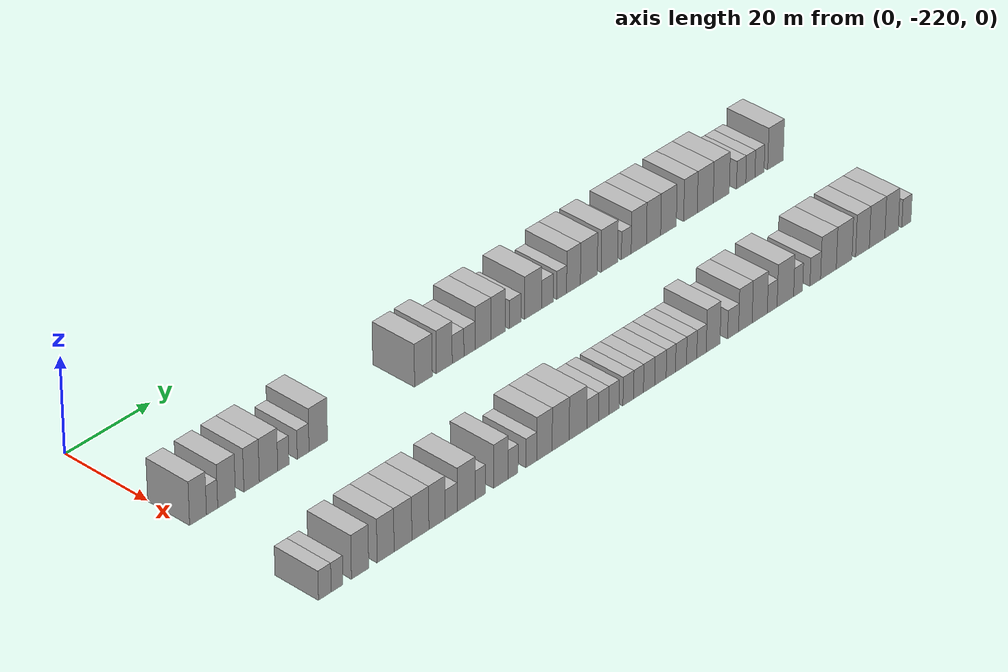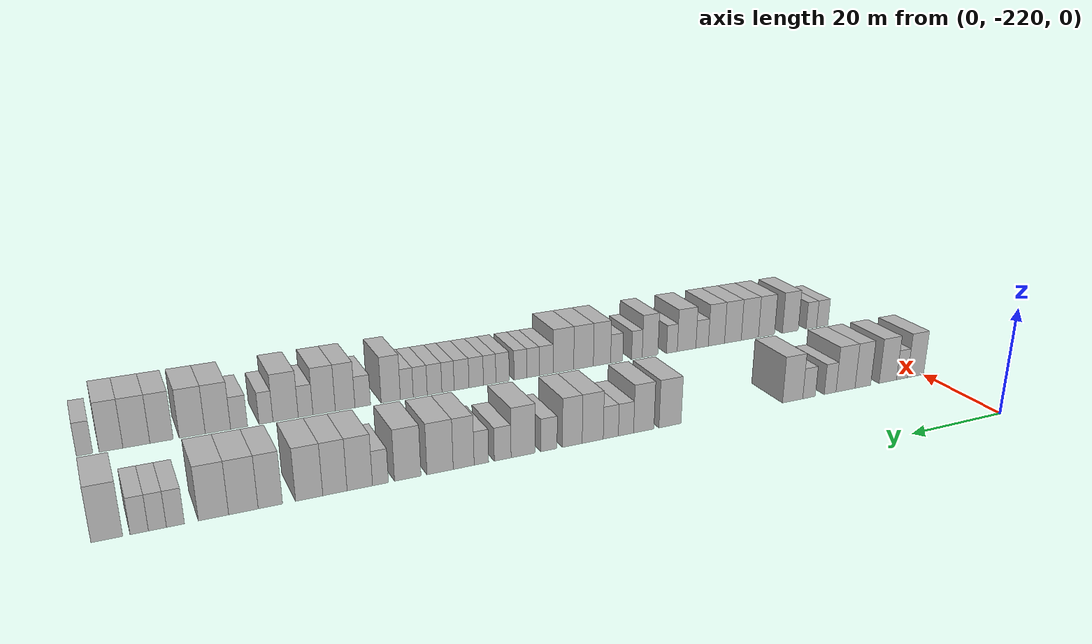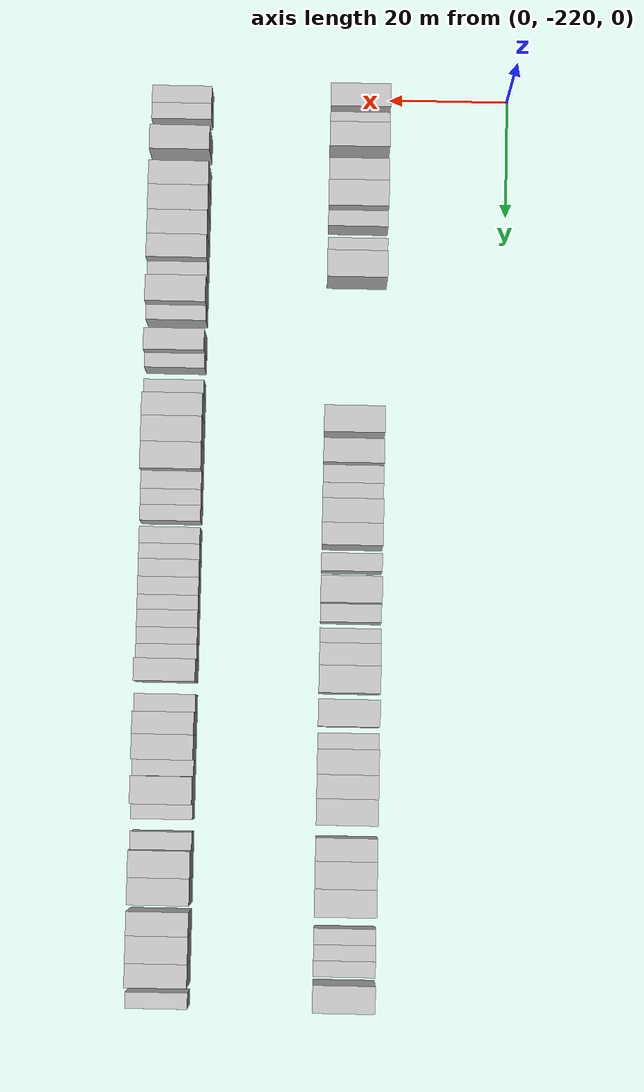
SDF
<sdf version="1.6">
 <world name="default">
  <model name="building_1">
   <static>1</static>
   <pose>25.0000 -218.0237 0 0.000000 0.000000 0.000000</pose>
   <link name="link">
    <pose>0 0 4.50 0 0 0</pose>
    <collision name="collision"><geometry><box><size>10.0000 3.9525 9.0000</size></box></geometry></collision>
    <visual name="visual">
     <cast_shadows>0</cast_shadows>
     <geometry><box><size>10.0000 3.9525 9.0000</size></box></geometry>
     <material>
      <script>
       <uri>model://HANNAS_wall/materials/scripts</uri>
       <uri>model://HANNAS_wall/materials/textures</uri>
       <name>vrc/HANNAS_wall</name>
      </script>
     </material>
    </visual>
   </link>
  </model>
  <model name="building_2">
   <static>1</static>
   <pose>25.0000 -214.7297 0 0.000000 0.000000 0.000000</pose>
   <link name="link">
    <pose>0 0 3.00 0 0 0</pose>
    <collision name="collision"><geometry><box><size>10.0000 2.6356 6.0000</size></box></geometry></collision>
    <visual name="visual">
     <cast_shadows>0</cast_shadows>
     <geometry><box><size>10.0000 2.6356 6.0000</size></box></geometry>
     <material>
      <script>
       <uri>model://HANNAS_wall/materials/scripts</uri>
       <uri>model://HANNAS_wall/materials/textures</uri>
       <name>vrc/HANNAS_wall</name>
      </script>
     </material>
    </visual>
   </link>
  </model>
  <model name="building_3">
   <static>1</static>
   <pose>25.0000 -211.3211 0 0.000000 0.000000 0.000000</pose>
   <link name="link">
    <pose>0 0 4.50 0 0 0</pose>
    <collision name="collision"><geometry><box><size>10.0000 4.1815 9.0000</size></box></geometry></collision>
    <visual name="visual">
     <cast_shadows>0</cast_shadows>
     <geometry><box><size>10.0000 4.1815 9.0000</size></box></geometry>
     <material>
      <script>
       <uri>model://HANNAS_wall/materials/scripts</uri>
       <uri>model://HANNAS_wall/materials/textures</uri>
       <name>vrc/HANNAS_wall</name>
      </script>
     </material>
    </visual>
   </link>
  </model>
  <model name="building_4">
   <static>1</static>
   <pose>25.0000 -205.3935 0 0.000000 0.000000 0.000000</pose>
   <link name="link">
    <pose>0 0 4.50 0 0 0</pose>
    <collision name="collision"><geometry><box><size>10.0000 3.6737 9.0000</size></box></geometry></collision>
    <visual name="visual">
     <cast_shadows>0</cast_shadows>
     <geometry><box><size>10.0000 3.6737 9.0000</size></box></geometry>
     <material>
      <script>
       <uri>model://HANNAS_wall/materials/scripts</uri>
       <uri>model://HANNAS_wall/materials/textures</uri>
       <name>vrc/HANNAS_wall</name>
      </script>
     </material>
    </visual>
   </link>
  </model>
  <model name="building_5">
   <static>1</static>
   <pose>25.0000 -201.3614 0 0.000000 0.000000 0.000000</pose>
   <link name="link">
    <pose>0 0 4.50 0 0 0</pose>
    <collision name="collision"><geometry><box><size>10.0000 4.3906 9.0000</size></box></geometry></collision>
    <visual name="visual">
     <cast_shadows>0</cast_shadows>
     <geometry><box><size>10.0000 4.3906 9.0000</size></box></geometry>
     <material>
      <script>
       <uri>model://HANNAS_wall/materials/scripts</uri>
       <uri>model://HANNAS_wall/materials/textures</uri>
       <name>vrc/HANNAS_wall</name>
      </script>
     </material>
    </visual>
   </link>
  </model>
  <model name="building_6">
   <static>1</static>
   <pose>25.0000 -197.8209 0 0.000000 0.000000 0.000000</pose>
   <link name="link">
    <pose>0 0 3.00 0 0 0</pose>
    <collision name="collision"><geometry><box><size>10.0000 2.6903 6.0000</size></box></geometry></collision>
    <visual name="visual">
     <cast_shadows>0</cast_shadows>
     <geometry><box><size>10.0000 2.6903 6.0000</size></box></geometry>
     <material>
      <script>
       <uri>model://HANNAS_wall/materials/scripts</uri>
       <uri>model://HANNAS_wall/materials/textures</uri>
       <name>vrc/HANNAS_wall</name>
      </script>
     </material>
    </visual>
   </link>
  </model>
  <model name="building_7">
   <static>1</static>
   <pose>25.0000 -193.0560 0 0.000000 0.000000 0.000000</pose>
   <link name="link">
    <pose>0 0 3.00 0 0 0</pose>
    <collision name="collision"><geometry><box><size>10.0000 2.8395 6.0000</size></box></geometry></collision>
    <visual name="visual">
     <cast_shadows>0</cast_shadows>
     <geometry><box><size>10.0000 2.8395 6.0000</size></box></geometry>
     <material>
      <script>
       <uri>model://HANNAS_wall/materials/scripts</uri>
       <uri>model://HANNAS_wall/materials/textures</uri>
       <name>vrc/HANNAS_wall</name>
      </script>
     </material>
    </visual>
   </link>
  </model>
  <model name="building_8">
   <static>1</static>
   <pose>25.0000 -189.3936 0 0.000000 0.000000 0.000000</pose>
   <link name="link">
    <pose>0 0 4.50 0 0 0</pose>
    <collision name="collision"><geometry><box><size>10.0000 4.4855 9.0000</size></box></geometry></collision>
    <visual name="visual">
     <cast_shadows>0</cast_shadows>
     <geometry><box><size>10.0000 4.4855 9.0000</size></box></geometry>
     <material>
      <script>
       <uri>model://HANNAS_wall/materials/scripts</uri>
       <uri>model://HANNAS_wall/materials/textures</uri>
       <name>vrc/HANNAS_wall</name>
      </script>
     </material>
    </visual>
   </link>
  </model>
  <model name="building_9">
   <static>1</static>
   <pose>25.0000 -163.4906 0 0.000000 0.000000 0.000000</pose>
   <link name="link">
    <pose>0 0 4.50 0 0 0</pose>
    <collision name="collision"><geometry><box><size>10.0000 4.4402 9.0000</size></box></geometry></collision>
    <visual name="visual">
     <cast_shadows>0</cast_shadows>
     <geometry><box><size>10.0000 4.4402 9.0000</size></box></geometry>
     <material>
      <script>
       <uri>model://HANNAS_wall/materials/scripts</uri>
       <uri>model://HANNAS_wall/materials/textures</uri>
       <name>vrc/HANNAS_wall</name>
      </script>
     </material>
    </visual>
   </link>
  </model>
  <model name="building_10">
   <static>1</static>
   <pose>25.0000 -158.2627 0 0.000000 0.000000 0.000000</pose>
   <link name="link">
    <pose>0 0 4.50 0 0 0</pose>
    <collision name="collision"><geometry><box><size>10.0000 4.0157 9.0000</size></box></geometry></collision>
    <visual name="visual">
     <cast_shadows>0</cast_shadows>
     <geometry><box><size>10.0000 4.0157 9.0000</size></box></geometry>
     <material>
      <script>
       <uri>model://HANNAS_wall/materials/scripts</uri>
       <uri>model://HANNAS_wall/materials/textures</uri>
       <name>vrc/HANNAS_wall</name>
      </script>
     </material>
    </visual>
   </link>
  </model>
  <model name="building_11">
   <static>1</static>
   <pose>25.0000 -154.7772 0 0.000000 0.000000 0.000000</pose>
   <link name="link">
    <pose>0 0 3.00 0 0 0</pose>
    <collision name="collision"><geometry><box><size>10.0000 2.9553 6.0000</size></box></geometry></collision>
    <visual name="visual">
     <cast_shadows>0</cast_shadows>
     <geometry><box><size>10.0000 2.9553 6.0000</size></box></geometry>
     <material>
      <script>
       <uri>model://HANNAS_wall/materials/scripts</uri>
       <uri>model://HANNAS_wall/materials/textures</uri>
       <name>vrc/HANNAS_wall</name>
      </script>
     </material>
    </visual>
   </link>
  </model>
  <model name="building_12">
   <static>1</static>
   <pose>25.0000 -151.8430 0 0.000000 0.000000 0.000000</pose>
   <link name="link">
    <pose>0 0 3.00 0 0 0</pose>
    <collision name="collision"><geometry><box><size>10.0000 2.9130 6.0000</size></box></geometry></collision>
    <visual name="visual">
     <cast_shadows>0</cast_shadows>
     <geometry><box><size>10.0000 2.9130 6.0000</size></box></geometry>
     <material>
      <script>
       <uri>model://HANNAS_wall/materials/scripts</uri>
       <uri>model://HANNAS_wall/materials/textures</uri>
       <name>vrc/HANNAS_wall</name>
      </script>
     </material>
    </visual>
   </link>
  </model>
  <model name="building_13">
   <static>1</static>
   <pose>25.0000 -148.3848 0 0.000000 0.000000 0.000000</pose>
   <link name="link">
    <pose>0 0 4.50 0 0 0</pose>
    <collision name="collision"><geometry><box><size>10.0000 4.0035 9.0000</size></box></geometry></collision>
    <visual name="visual">
     <cast_shadows>0</cast_shadows>
     <geometry><box><size>10.0000 4.0035 9.0000</size></box></geometry>
     <material>
      <script>
       <uri>model://HANNAS_wall/materials/scripts</uri>
       <uri>model://HANNAS_wall/materials/textures</uri>
       <name>vrc/HANNAS_wall</name>
      </script>
     </material>
    </visual>
   </link>
  </model>
  <model name="building_14">
   <static>1</static>
   <pose>25.0000 -144.5421 0 0.000000 0.000000 0.000000</pose>
   <link name="link">
    <pose>0 0 4.50 0 0 0</pose>
    <collision name="collision"><geometry><box><size>10.0000 3.6819 9.0000</size></box></geometry></collision>
    <visual name="visual">
     <cast_shadows>0</cast_shadows>
     <geometry><box><size>10.0000 3.6819 9.0000</size></box></geometry>
     <material>
      <script>
       <uri>model://HANNAS_wall/materials/scripts</uri>
       <uri>model://HANNAS_wall/materials/textures</uri>
       <name>vrc/HANNAS_wall</name>
      </script>
     </material>
    </visual>
   </link>
  </model>
  <model name="building_15">
   <static>1</static>
   <pose>25.0000 -140.2156 0 0.000000 0.000000 0.000000</pose>
   <link name="link">
    <pose>0 0 3.00 0 0 0</pose>
    <collision name="collision"><geometry><box><size>10.0000 2.9711 6.0000</size></box></geometry></collision>
    <visual name="visual">
     <cast_shadows>0</cast_shadows>
     <geometry><box><size>10.0000 2.9711 6.0000</size></box></geometry>
     <material>
      <script>
       <uri>model://HANNAS_wall/materials/scripts</uri>
       <uri>model://HANNAS_wall/materials/textures</uri>
       <name>vrc/HANNAS_wall</name>
      </script>
     </material>
    </visual>
   </link>
  </model>
  <model name="building_16">
   <static>1</static>
   <pose>25.0000 -135.5298 0 0.000000 0.000000 0.000000</pose>
   <link name="link">
    <pose>0 0 4.50 0 0 0</pose>
    <collision name="collision"><geometry><box><size>10.0000 4.4004 9.0000</size></box></geometry></collision>
    <visual name="visual">
     <cast_shadows>0</cast_shadows>
     <geometry><box><size>10.0000 4.4004 9.0000</size></box></geometry>
     <material>
      <script>
       <uri>model://HANNAS_wall/materials/scripts</uri>
       <uri>model://HANNAS_wall/materials/textures</uri>
       <name>vrc/HANNAS_wall</name>
      </script>
     </material>
    </visual>
   </link>
  </model>
  <model name="building_17">
   <static>1</static>
   <pose>25.0000 -131.8402 0 0.000000 0.000000 0.000000</pose>
   <link name="link">
    <pose>0 0 3.00 0 0 0</pose>
    <collision name="collision"><geometry><box><size>10.0000 2.9789 6.0000</size></box></geometry></collision>
    <visual name="visual">
     <cast_shadows>0</cast_shadows>
     <geometry><box><size>10.0000 2.9789 6.0000</size></box></geometry>
     <material>
      <script>
       <uri>model://HANNAS_wall/materials/scripts</uri>
       <uri>model://HANNAS_wall/materials/textures</uri>
       <name>vrc/HANNAS_wall</name>
      </script>
     </material>
    </visual>
   </link>
  </model>
  <model name="building_18">
   <static>1</static>
   <pose>25.0000 -128.0806 0 0.000000 0.000000 0.000000</pose>
   <link name="link">
    <pose>0 0 3.00 0 0 0</pose>
    <collision name="collision"><geometry><box><size>10.0000 2.5402 6.0000</size></box></geometry></collision>
    <visual name="visual">
     <cast_shadows>0</cast_shadows>
     <geometry><box><size>10.0000 2.5402 6.0000</size></box></geometry>
     <material>
      <script>
       <uri>model://HANNAS_wall/materials/scripts</uri>
       <uri>model://HANNAS_wall/materials/textures</uri>
       <name>vrc/HANNAS_wall</name>
      </script>
     </material>
    </visual>
   </link>
  </model>
  <model name="building_19">
   <static>1</static>
   <pose>25.0000 -125.0010 0 0.000000 0.000000 0.000000</pose>
   <link name="link">
    <pose>0 0 4.50 0 0 0</pose>
    <collision name="collision"><geometry><box><size>10.0000 3.6189 9.0000</size></box></geometry></collision>
    <visual name="visual">
     <cast_shadows>0</cast_shadows>
     <geometry><box><size>10.0000 3.6189 9.0000</size></box></geometry>
     <material>
      <script>
       <uri>model://HANNAS_wall/materials/scripts</uri>
       <uri>model://HANNAS_wall/materials/textures</uri>
       <name>vrc/HANNAS_wall</name>
      </script>
     </material>
    </visual>
   </link>
  </model>
  <model name="building_20">
   <static>1</static>
   <pose>25.0000 -120.9565 0 0.000000 0.000000 0.000000</pose>
   <link name="link">
    <pose>0 0 4.50 0 0 0</pose>
    <collision name="collision"><geometry><box><size>10.0000 4.4701 9.0000</size></box></geometry></collision>
    <visual name="visual">
     <cast_shadows>0</cast_shadows>
     <geometry><box><size>10.0000 4.4701 9.0000</size></box></geometry>
     <material>
      <script>
       <uri>model://HANNAS_wall/materials/scripts</uri>
       <uri>model://HANNAS_wall/materials/textures</uri>
       <name>vrc/HANNAS_wall</name>
      </script>
     </material>
    </visual>
   </link>
  </model>
  <model name="building_21">
   <static>1</static>
   <pose>25.0000 -115.5185 0 0.000000 0.000000 0.000000</pose>
   <link name="link">
    <pose>0 0 4.50 0 0 0</pose>
    <collision name="collision"><geometry><box><size>10.0000 4.4060 9.0000</size></box></geometry></collision>
    <visual name="visual">
     <cast_shadows>0</cast_shadows>
     <geometry><box><size>10.0000 4.4060 9.0000</size></box></geometry>
     <material>
      <script>
       <uri>model://HANNAS_wall/materials/scripts</uri>
       <uri>model://HANNAS_wall/materials/textures</uri>
       <name>vrc/HANNAS_wall</name>
      </script>
     </material>
    </visual>
   </link>
  </model>
  <model name="building_22">
   <static>1</static>
   <pose>25.0000 -111.0188 0 0.000000 0.000000 0.000000</pose>
   <link name="link">
    <pose>0 0 3.00 0 0 0</pose>
    <collision name="collision"><geometry><box><size>10.0000 2.5934 6.0000</size></box></geometry></collision>
    <visual name="visual">
     <cast_shadows>0</cast_shadows>
     <geometry><box><size>10.0000 2.5934 6.0000</size></box></geometry>
     <material>
      <script>
       <uri>model://HANNAS_wall/materials/scripts</uri>
       <uri>model://HANNAS_wall/materials/textures</uri>
       <name>vrc/HANNAS_wall</name>
      </script>
     </material>
    </visual>
   </link>
  </model>
  <model name="building_23">
   <static>1</static>
   <pose>25.0000 -107.6772 0 0.000000 0.000000 0.000000</pose>
   <link name="link">
    <pose>0 0 4.50 0 0 0</pose>
    <collision name="collision"><geometry><box><size>10.0000 4.0898 9.0000</size></box></geometry></collision>
    <visual name="visual">
     <cast_shadows>0</cast_shadows>
     <geometry><box><size>10.0000 4.0898 9.0000</size></box></geometry>
     <material>
      <script>
       <uri>model://HANNAS_wall/materials/scripts</uri>
       <uri>model://HANNAS_wall/materials/textures</uri>
       <name>vrc/HANNAS_wall</name>
      </script>
     </material>
    </visual>
   </link>
  </model>
  <model name="building_24">
   <static>1</static>
   <pose>25.0000 -103.7062 0 0.000000 0.000000 0.000000</pose>
   <link name="link">
    <pose>0 0 4.50 0 0 0</pose>
    <collision name="collision"><geometry><box><size>10.0000 3.8522 9.0000</size></box></geometry></collision>
    <visual name="visual">
     <cast_shadows>0</cast_shadows>
     <geometry><box><size>10.0000 3.8522 9.0000</size></box></geometry>
     <material>
      <script>
       <uri>model://HANNAS_wall/materials/scripts</uri>
       <uri>model://HANNAS_wall/materials/textures</uri>
       <name>vrc/HANNAS_wall</name>
      </script>
     </material>
    </visual>
   </link>
  </model>
  <model name="building_25">
   <static>1</static>
   <pose>25.0000 -99.6656 0 0.000000 0.000000 0.000000</pose>
   <link name="link">
    <pose>0 0 4.50 0 0 0</pose>
    <collision name="collision"><geometry><box><size>10.0000 4.2291 9.0000</size></box></geometry></collision>
    <visual name="visual">
     <cast_shadows>0</cast_shadows>
     <geometry><box><size>10.0000 4.2291 9.0000</size></box></geometry>
     <material>
      <script>
       <uri>model://HANNAS_wall/materials/scripts</uri>
       <uri>model://HANNAS_wall/materials/textures</uri>
       <name>vrc/HANNAS_wall</name>
      </script>
     </material>
    </visual>
   </link>
  </model>
  <model name="building_26">
   <static>1</static>
   <pose>25.0000 -93.7013 0 0.000000 0.000000 0.000000</pose>
   <link name="link">
    <pose>0 0 4.50 0 0 0</pose>
    <collision name="collision"><geometry><box><size>10.0000 3.6995 9.0000</size></box></geometry></collision>
    <visual name="visual">
     <cast_shadows>0</cast_shadows>
     <geometry><box><size>10.0000 3.6995 9.0000</size></box></geometry>
     <material>
      <script>
       <uri>model://HANNAS_wall/materials/scripts</uri>
       <uri>model://HANNAS_wall/materials/textures</uri>
       <name>vrc/HANNAS_wall</name>
      </script>
     </material>
    </visual>
   </link>
  </model>
  <model name="building_27">
   <static>1</static>
   <pose>25.0000 -89.6552 0 0.000000 0.000000 0.000000</pose>
   <link name="link">
    <pose>0 0 4.50 0 0 0</pose>
    <collision name="collision"><geometry><box><size>10.0000 4.3927 9.0000</size></box></geometry></collision>
    <visual name="visual">
     <cast_shadows>0</cast_shadows>
     <geometry><box><size>10.0000 4.3927 9.0000</size></box></geometry>
     <material>
      <script>
       <uri>model://HANNAS_wall/materials/scripts</uri>
       <uri>model://HANNAS_wall/materials/textures</uri>
       <name>vrc/HANNAS_wall</name>
      </script>
     </material>
    </visual>
   </link>
  </model>
  <model name="building_28">
   <static>1</static>
   <pose>25.0000 -85.2483 0 0.000000 0.000000 0.000000</pose>
   <link name="link">
    <pose>0 0 4.50 0 0 0</pose>
    <collision name="collision"><geometry><box><size>10.0000 4.4211 9.0000</size></box></geometry></collision>
    <visual name="visual">
     <cast_shadows>0</cast_shadows>
     <geometry><box><size>10.0000 4.4211 9.0000</size></box></geometry>
     <material>
      <script>
       <uri>model://HANNAS_wall/materials/scripts</uri>
       <uri>model://HANNAS_wall/materials/textures</uri>
       <name>vrc/HANNAS_wall</name>
      </script>
     </material>
    </visual>
   </link>
  </model>
  <model name="building_29">
   <static>1</static>
   <pose>25.0000 -79.7500 0 0.000000 0.000000 0.000000</pose>
   <link name="link">
    <pose>0 0 3.00 0 0 0</pose>
    <collision name="collision"><geometry><box><size>10.0000 2.5753 6.0000</size></box></geometry></collision>
    <visual name="visual">
     <cast_shadows>0</cast_shadows>
     <geometry><box><size>10.0000 2.5753 6.0000</size></box></geometry>
     <material>
      <script>
       <uri>model://HANNAS_wall/materials/scripts</uri>
       <uri>model://HANNAS_wall/materials/textures</uri>
       <name>vrc/HANNAS_wall</name>
      </script>
     </material>
    </visual>
   </link>
  </model>
  <model name="building_30">
   <static>1</static>
   <pose>25.0000 -77.1919 0 0.000000 0.000000 0.000000</pose>
   <link name="link">
    <pose>0 0 3.00 0 0 0</pose>
    <collision name="collision"><geometry><box><size>10.0000 2.5410 6.0000</size></box></geometry></collision>
    <visual name="visual">
     <cast_shadows>0</cast_shadows>
     <geometry><box><size>10.0000 2.5410 6.0000</size></box></geometry>
     <material>
      <script>
       <uri>model://HANNAS_wall/materials/scripts</uri>
       <uri>model://HANNAS_wall/materials/textures</uri>
       <name>vrc/HANNAS_wall</name>
      </script>
     </material>
    </visual>
   </link>
  </model>
  <model name="building_31">
   <static>1</static>
   <pose>25.0000 -74.6405 0 0.000000 0.000000 0.000000</pose>
   <link name="link">
    <pose>0 0 3.00 0 0 0</pose>
    <collision name="collision"><geometry><box><size>10.0000 2.5617 6.0000</size></box></geometry></collision>
    <visual name="visual">
     <cast_shadows>0</cast_shadows>
     <geometry><box><size>10.0000 2.5617 6.0000</size></box></geometry>
     <material>
      <script>
       <uri>model://HANNAS_wall/materials/scripts</uri>
       <uri>model://HANNAS_wall/materials/textures</uri>
       <name>vrc/HANNAS_wall</name>
      </script>
     </material>
    </visual>
   </link>
  </model>
  <model name="building_32">
   <static>1</static>
   <pose>25.0000 -70.1824 0 0.000000 0.000000 0.000000</pose>
   <link name="link">
    <pose>0 0 4.50 0 0 0</pose>
    <collision name="collision"><geometry><box><size>10.0000 4.3544 9.0000</size></box></geometry></collision>
    <visual name="visual">
     <cast_shadows>0</cast_shadows>
     <geometry><box><size>10.0000 4.3544 9.0000</size></box></geometry>
     <material>
      <script>
       <uri>model://HANNAS_wall/materials/scripts</uri>
       <uri>model://HANNAS_wall/materials/textures</uri>
       <name>vrc/HANNAS_wall</name>
      </script>
     </material>
    </visual>
   </link>
  </model>
  <model name="building_99">
   <static>1</static>
   <pose>55.0000 -218.5104 0 0.000000 0.000000 0.000000</pose>
   <link name="link">
    <pose>0 0 3.00 0 0 0</pose>
    <collision name="collision"><geometry><box><size>10.0000 2.9792 6.0000</size></box></geometry></collision>
    <visual name="visual">
     <cast_shadows>0</cast_shadows>
     <geometry><box><size>10.0000 2.9792 6.0000</size></box></geometry>
     <material>
      <script>
       <uri>model://HANNAS_wall/materials/scripts</uri>
       <uri>model://HANNAS_wall/materials/textures</uri>
       <name>vrc/HANNAS_wall</name>
      </script>
     </material>
    </visual>
   </link>
  </model>
  <model name="building_100">
   <static>1</static>
   <pose>55.0000 -215.6413 0 0.000000 0.000000 0.000000</pose>
   <link name="link">
    <pose>0 0 3.00 0 0 0</pose>
    <collision name="collision"><geometry><box><size>10.0000 2.7591 6.0000</size></box></geometry></collision>
    <visual name="visual">
     <cast_shadows>0</cast_shadows>
     <geometry><box><size>10.0000 2.7591 6.0000</size></box></geometry>
     <material>
      <script>
       <uri>model://HANNAS_wall/materials/scripts</uri>
       <uri>model://HANNAS_wall/materials/textures</uri>
       <name>vrc/HANNAS_wall</name>
      </script>
     </material>
    </visual>
   </link>
  </model>
  <model name="building_101">
   <static>1</static>
   <pose>55.0000 -210.2220 0 0.000000 0.000000 0.000000</pose>
   <link name="link">
    <pose>0 0 4.50 0 0 0</pose>
    <collision name="collision"><geometry><box><size>10.0000 4.0794 9.0000</size></box></geometry></collision>
    <visual name="visual">
     <cast_shadows>0</cast_shadows>
     <geometry><box><size>10.0000 4.0794 9.0000</size></box></geometry>
     <material>
      <script>
       <uri>model://HANNAS_wall/materials/scripts</uri>
       <uri>model://HANNAS_wall/materials/textures</uri>
       <name>vrc/HANNAS_wall</name>
      </script>
     </material>
    </visual>
   </link>
  </model>
  <model name="building_102">
   <static>1</static>
   <pose>55.0000 -204.1587 0 0.000000 0.000000 0.000000</pose>
   <link name="link">
    <pose>0 0 4.50 0 0 0</pose>
    <collision name="collision"><geometry><box><size>10.0000 4.0472 9.0000</size></box></geometry></collision>
    <visual name="visual">
     <cast_shadows>0</cast_shadows>
     <geometry><box><size>10.0000 4.0472 9.0000</size></box></geometry>
     <material>
      <script>
       <uri>model://HANNAS_wall/materials/scripts</uri>
       <uri>model://HANNAS_wall/materials/textures</uri>
       <name>vrc/HANNAS_wall</name>
      </script>
     </material>
    </visual>
   </link>
  </model>
  <model name="building_103">
   <static>1</static>
   <pose>55.0000 -200.0025 0 0.000000 0.000000 0.000000</pose>
   <link name="link">
    <pose>0 0 4.50 0 0 0</pose>
    <collision name="collision"><geometry><box><size>10.0000 4.2651 9.0000</size></box></geometry></collision>
    <visual name="visual">
     <cast_shadows>0</cast_shadows>
     <geometry><box><size>10.0000 4.2651 9.0000</size></box></geometry>
     <material>
      <script>
       <uri>model://HANNAS_wall/materials/scripts</uri>
       <uri>model://HANNAS_wall/materials/textures</uri>
       <name>vrc/HANNAS_wall</name>
      </script>
     </material>
    </visual>
   </link>
  </model>
  <model name="building_104">
   <static>1</static>
   <pose>55.0000 -195.8203 0 0.000000 0.000000 0.000000</pose>
   <link name="link">
    <pose>0 0 4.50 0 0 0</pose>
    <collision name="collision"><geometry><box><size>10.0000 4.0992 9.0000</size></box></geometry></collision>
    <visual name="visual">
     <cast_shadows>0</cast_shadows>
     <geometry><box><size>10.0000 4.0992 9.0000</size></box></geometry>
     <material>
      <script>
       <uri>model://HANNAS_wall/materials/scripts</uri>
       <uri>model://HANNAS_wall/materials/textures</uri>
       <name>vrc/HANNAS_wall</name>
      </script>
     </material>
    </visual>
   </link>
  </model>
  <model name="building_105">
   <static>1</static>
   <pose>55.0000 -191.8122 0 0.000000 0.000000 0.000000</pose>
   <link name="link">
    <pose>0 0 4.50 0 0 0</pose>
    <collision name="collision"><geometry><box><size>10.0000 3.9171 9.0000</size></box></geometry></collision>
    <visual name="visual">
     <cast_shadows>0</cast_shadows>
     <geometry><box><size>10.0000 3.9171 9.0000</size></box></geometry>
     <material>
      <script>
       <uri>model://HANNAS_wall/materials/scripts</uri>
       <uri>model://HANNAS_wall/materials/textures</uri>
       <name>vrc/HANNAS_wall</name>
      </script>
     </material>
    </visual>
   </link>
  </model>
  <model name="building_106">
   <static>1</static>
   <pose>55.0000 -188.3650 0 0.000000 0.000000 0.000000</pose>
   <link name="link">
    <pose>0 0 3.00 0 0 0</pose>
    <collision name="collision"><geometry><box><size>10.0000 2.9772 6.0000</size></box></geometry></collision>
    <visual name="visual">
     <cast_shadows>0</cast_shadows>
     <geometry><box><size>10.0000 2.9772 6.0000</size></box></geometry>
     <material>
      <script>
       <uri>model://HANNAS_wall/materials/scripts</uri>
       <uri>model://HANNAS_wall/materials/textures</uri>
       <name>vrc/HANNAS_wall</name>
      </script>
     </material>
    </visual>
   </link>
  </model>
  <model name="building_107">
   <static>1</static>
   <pose>55.0000 -184.6752 0 0.000000 0.000000 0.000000</pose>
   <link name="link">
    <pose>0 0 4.50 0 0 0</pose>
    <collision name="collision"><geometry><box><size>10.0000 4.4025 9.0000</size></box></geometry></collision>
    <visual name="visual">
     <cast_shadows>0</cast_shadows>
     <geometry><box><size>10.0000 4.4025 9.0000</size></box></geometry>
     <material>
      <script>
       <uri>model://HANNAS_wall/materials/scripts</uri>
       <uri>model://HANNAS_wall/materials/textures</uri>
       <name>vrc/HANNAS_wall</name>
      </script>
     </material>
    </visual>
   </link>
  </model>
  <model name="building_108">
   <static>1</static>
   <pose>55.0000 -181.2149 0 0.000000 0.000000 0.000000</pose>
   <link name="link">
    <pose>0 0 3.00 0 0 0</pose>
    <collision name="collision"><geometry><box><size>10.0000 2.5181 6.0000</size></box></geometry></collision>
    <visual name="visual">
     <cast_shadows>0</cast_shadows>
     <geometry><box><size>10.0000 2.5181 6.0000</size></box></geometry>
     <material>
      <script>
       <uri>model://HANNAS_wall/materials/scripts</uri>
       <uri>model://HANNAS_wall/materials/textures</uri>
       <name>vrc/HANNAS_wall</name>
      </script>
     </material>
    </visual>
   </link>
  </model>
  <model name="building_109">
   <static>1</static>
   <pose>55.0000 -176.1533 0 0.000000 0.000000 0.000000</pose>
   <link name="link">
    <pose>0 0 4.50 0 0 0</pose>
    <collision name="collision"><geometry><box><size>10.0000 3.6051 9.0000</size></box></geometry></collision>
    <visual name="visual">
     <cast_shadows>0</cast_shadows>
     <geometry><box><size>10.0000 3.6051 9.0000</size></box></geometry>
     <material>
      <script>
       <uri>model://HANNAS_wall/materials/scripts</uri>
       <uri>model://HANNAS_wall/materials/textures</uri>
       <name>vrc/HANNAS_wall</name>
      </script>
     </material>
    </visual>
   </link>
  </model>
  <model name="building_110">
   <static>1</static>
   <pose>55.0000 -173.1428 0 0.000000 0.000000 0.000000</pose>
   <link name="link">
    <pose>0 0 3.00 0 0 0</pose>
    <collision name="collision"><geometry><box><size>10.0000 2.4159 6.0000</size></box></geometry></collision>
    <visual name="visual">
     <cast_shadows>0</cast_shadows>
     <geometry><box><size>10.0000 2.4159 6.0000</size></box></geometry>
     <material>
      <script>
       <uri>model://HANNAS_wall/materials/scripts</uri>
       <uri>model://HANNAS_wall/materials/textures</uri>
       <name>vrc/HANNAS_wall</name>
      </script>
     </material>
    </visual>
   </link>
  </model>
  <model name="building_111">
   <static>1</static>
   <pose>55.0000 -168.5805 0 0.000000 0.000000 0.000000</pose>
   <link name="link">
    <pose>0 0 3.00 0 0 0</pose>
    <collision name="collision"><geometry><box><size>10.0000 2.7088 6.0000</size></box></geometry></collision>
    <visual name="visual">
     <cast_shadows>0</cast_shadows>
     <geometry><box><size>10.0000 2.7088 6.0000</size></box></geometry>
     <material>
      <script>
       <uri>model://HANNAS_wall/materials/scripts</uri>
       <uri>model://HANNAS_wall/materials/textures</uri>
       <name>vrc/HANNAS_wall</name>
      </script>
     </material>
    </visual>
   </link>
  </model>
  <model name="building_112">
   <static>1</static>
   <pose>55.0000 -165.3141 0 0.000000 0.000000 0.000000</pose>
   <link name="link">
    <pose>0 0 4.50 0 0 0</pose>
    <collision name="collision"><geometry><box><size>10.0000 3.8241 9.0000</size></box></geometry></collision>
    <visual name="visual">
     <cast_shadows>0</cast_shadows>
     <geometry><box><size>10.0000 3.8241 9.0000</size></box></geometry>
     <material>
      <script>
       <uri>model://HANNAS_wall/materials/scripts</uri>
       <uri>model://HANNAS_wall/materials/textures</uri>
       <name>vrc/HANNAS_wall</name>
      </script>
     </material>
    </visual>
   </link>
  </model>
  <model name="building_113">
   <static>1</static>
   <pose>55.0000 -161.2546 0 0.000000 0.000000 0.000000</pose>
   <link name="link">
    <pose>0 0 4.50 0 0 0</pose>
    <collision name="collision"><geometry><box><size>10.0000 4.2949 9.0000</size></box></geometry></collision>
    <visual name="visual">
     <cast_shadows>0</cast_shadows>
     <geometry><box><size>10.0000 4.2949 9.0000</size></box></geometry>
     <material>
      <script>
       <uri>model://HANNAS_wall/materials/scripts</uri>
       <uri>model://HANNAS_wall/materials/textures</uri>
       <name>vrc/HANNAS_wall</name>
      </script>
     </material>
    </visual>
   </link>
  </model>
  <model name="building_114">
   <static>1</static>
   <pose>55.0000 -156.8898 0 0.000000 0.000000 0.000000</pose>
   <link name="link">
    <pose>0 0 4.50 0 0 0</pose>
    <collision name="collision"><geometry><box><size>10.0000 4.4347 9.0000</size></box></geometry></collision>
    <visual name="visual">
     <cast_shadows>0</cast_shadows>
     <geometry><box><size>10.0000 4.4347 9.0000</size></box></geometry>
     <material>
      <script>
       <uri>model://HANNAS_wall/materials/scripts</uri>
       <uri>model://HANNAS_wall/materials/textures</uri>
       <name>vrc/HANNAS_wall</name>
      </script>
     </material>
    </visual>
   </link>
  </model>
  <model name="building_115">
   <static>1</static>
   <pose>55.0000 -153.1826 0 0.000000 0.000000 0.000000</pose>
   <link name="link">
    <pose>0 0 3.00 0 0 0</pose>
    <collision name="collision"><geometry><box><size>10.0000 2.9797 6.0000</size></box></geometry></collision>
    <visual name="visual">
     <cast_shadows>0</cast_shadows>
     <geometry><box><size>10.0000 2.9797 6.0000</size></box></geometry>
     <material>
      <script>
       <uri>model://HANNAS_wall/materials/scripts</uri>
       <uri>model://HANNAS_wall/materials/textures</uri>
       <name>vrc/HANNAS_wall</name>
      </script>
     </material>
    </visual>
   </link>
  </model>
  <model name="building_116">
   <static>1</static>
   <pose>55.0000 -150.3841 0 0.000000 0.000000 0.000000</pose>
   <link name="link">
    <pose>0 0 3.00 0 0 0</pose>
    <collision name="collision"><geometry><box><size>10.0000 2.6173 6.0000</size></box></geometry></collision>
    <visual name="visual">
     <cast_shadows>0</cast_shadows>
     <geometry><box><size>10.0000 2.6173 6.0000</size></box></geometry>
     <material>
      <script>
       <uri>model://HANNAS_wall/materials/scripts</uri>
       <uri>model://HANNAS_wall/materials/textures</uri>
       <name>vrc/HANNAS_wall</name>
      </script>
     </material>
    </visual>
   </link>
  </model>
  <model name="building_117">
   <static>1</static>
   <pose>55.0000 -147.7492 0 0.000000 0.000000 0.000000</pose>
   <link name="link">
    <pose>0 0 3.00 0 0 0</pose>
    <collision name="collision"><geometry><box><size>10.0000 2.6527 6.0000</size></box></geometry></collision>
    <visual name="visual">
     <cast_shadows>0</cast_shadows>
     <geometry><box><size>10.0000 2.6527 6.0000</size></box></geometry>
     <material>
      <script>
       <uri>model://HANNAS_wall/materials/scripts</uri>
       <uri>model://HANNAS_wall/materials/textures</uri>
       <name>vrc/HANNAS_wall</name>
      </script>
     </material>
    </visual>
   </link>
  </model>
  <model name="building_118">
   <static>1</static>
   <pose>55.0000 -144.0522 0 0.000000 0.000000 0.000000</pose>
   <link name="link">
    <pose>0 0 3.00 0 0 0</pose>
    <collision name="collision"><geometry><box><size>10.0000 2.7412 6.0000</size></box></geometry></collision>
    <visual name="visual">
     <cast_shadows>0</cast_shadows>
     <geometry><box><size>10.0000 2.7412 6.0000</size></box></geometry>
     <material>
      <script>
       <uri>model://HANNAS_wall/materials/scripts</uri>
       <uri>model://HANNAS_wall/materials/textures</uri>
       <name>vrc/HANNAS_wall</name>
      </script>
     </material>
    </visual>
   </link>
  </model>
  <model name="building_119">
   <static>1</static>
   <pose>55.0000 -141.4076 0 0.000000 0.000000 0.000000</pose>
   <link name="link">
    <pose>0 0 3.00 0 0 0</pose>
    <collision name="collision"><geometry><box><size>10.0000 2.5482 6.0000</size></box></geometry></collision>
    <visual name="visual">
     <cast_shadows>0</cast_shadows>
     <geometry><box><size>10.0000 2.5482 6.0000</size></box></geometry>
     <material>
      <script>
       <uri>model://HANNAS_wall/materials/scripts</uri>
       <uri>model://HANNAS_wall/materials/textures</uri>
       <name>vrc/HANNAS_wall</name>
      </script>
     </material>
    </visual>
   </link>
  </model>
  <model name="building_120">
   <static>1</static>
   <pose>55.0000 -138.6728 0 0.000000 0.000000 0.000000</pose>
   <link name="link">
    <pose>0 0 3.00 0 0 0</pose>
    <collision name="collision"><geometry><box><size>10.0000 2.9214 6.0000</size></box></geometry></collision>
    <visual name="visual">
     <cast_shadows>0</cast_shadows>
     <geometry><box><size>10.0000 2.9214 6.0000</size></box></geometry>
     <material>
      <script>
       <uri>model://HANNAS_wall/materials/scripts</uri>
       <uri>model://HANNAS_wall/materials/textures</uri>
       <name>vrc/HANNAS_wall</name>
      </script>
     </material>
    </visual>
   </link>
  </model>
  <model name="building_121">
   <static>1</static>
   <pose>55.0000 -135.7266 0 0.000000 0.000000 0.000000</pose>
   <link name="link">
    <pose>0 0 3.00 0 0 0</pose>
    <collision name="collision"><geometry><box><size>10.0000 2.9710 6.0000</size></box></geometry></collision>
    <visual name="visual">
     <cast_shadows>0</cast_shadows>
     <geometry><box><size>10.0000 2.9710 6.0000</size></box></geometry>
     <material>
      <script>
       <uri>model://HANNAS_wall/materials/scripts</uri>
       <uri>model://HANNAS_wall/materials/textures</uri>
       <name>vrc/HANNAS_wall</name>
      </script>
     </material>
    </visual>
   </link>
  </model>
  <model name="building_122">
   <static>1</static>
   <pose>55.0000 -133.0238 0 0.000000 0.000000 0.000000</pose>
   <link name="link">
    <pose>0 0 3.00 0 0 0</pose>
    <collision name="collision"><geometry><box><size>10.0000 2.4346 6.0000</size></box></geometry></collision>
    <visual name="visual">
     <cast_shadows>0</cast_shadows>
     <geometry><box><size>10.0000 2.4346 6.0000</size></box></geometry>
     <material>
      <script>
       <uri>model://HANNAS_wall/materials/scripts</uri>
       <uri>model://HANNAS_wall/materials/textures</uri>
       <name>vrc/HANNAS_wall</name>
      </script>
     </material>
    </visual>
   </link>
  </model>
  <model name="building_123">
   <static>1</static>
   <pose>55.0000 -130.3683 0 0.000000 0.000000 0.000000</pose>
   <link name="link">
    <pose>0 0 3.00 0 0 0</pose>
    <collision name="collision"><geometry><box><size>10.0000 2.8764 6.0000</size></box></geometry></collision>
    <visual name="visual">
     <cast_shadows>0</cast_shadows>
     <geometry><box><size>10.0000 2.8764 6.0000</size></box></geometry>
     <material>
      <script>
       <uri>model://HANNAS_wall/materials/scripts</uri>
       <uri>model://HANNAS_wall/materials/textures</uri>
       <name>vrc/HANNAS_wall</name>
      </script>
     </material>
    </visual>
   </link>
  </model>
  <model name="building_124">
   <static>1</static>
   <pose>55.0000 -127.5705 0 0.000000 0.000000 0.000000</pose>
   <link name="link">
    <pose>0 0 3.00 0 0 0</pose>
    <collision name="collision"><geometry><box><size>10.0000 2.7192 6.0000</size></box></geometry></collision>
    <visual name="visual">
     <cast_shadows>0</cast_shadows>
     <geometry><box><size>10.0000 2.7192 6.0000</size></box></geometry>
     <material>
      <script>
       <uri>model://HANNAS_wall/materials/scripts</uri>
       <uri>model://HANNAS_wall/materials/textures</uri>
       <name>vrc/HANNAS_wall</name>
      </script>
     </material>
    </visual>
   </link>
  </model>
  <model name="building_125">
   <static>1</static>
   <pose>55.0000 -124.9729 0 0.000000 0.000000 0.000000</pose>
   <link name="link">
    <pose>0 0 3.00 0 0 0</pose>
    <collision name="collision"><geometry><box><size>10.0000 2.4760 6.0000</size></box></geometry></collision>
    <visual name="visual">
     <cast_shadows>0</cast_shadows>
     <geometry><box><size>10.0000 2.4760 6.0000</size></box></geometry>
     <material>
      <script>
       <uri>model://HANNAS_wall/materials/scripts</uri>
       <uri>model://HANNAS_wall/materials/textures</uri>
       <name>vrc/HANNAS_wall</name>
      </script>
     </material>
    </visual>
   </link>
  </model>
  <model name="building_126">
   <static>1</static>
   <pose>55.0000 -121.9028 0 0.000000 0.000000 0.000000</pose>
   <link name="link">
    <pose>0 0 4.50 0 0 0</pose>
    <collision name="collision"><geometry><box><size>10.0000 3.6641 9.0000</size></box></geometry></collision>
    <visual name="visual">
     <cast_shadows>0</cast_shadows>
     <geometry><box><size>10.0000 3.6641 9.0000</size></box></geometry>
     <material>
      <script>
       <uri>model://HANNAS_wall/materials/scripts</uri>
       <uri>model://HANNAS_wall/materials/textures</uri>
       <name>vrc/HANNAS_wall</name>
      </script>
     </material>
    </visual>
   </link>
  </model>
  <model name="building_127">
   <static>1</static>
   <pose>55.0000 -116.6091 0 0.000000 0.000000 0.000000</pose>
   <link name="link">
    <pose>0 0 3.00 0 0 0</pose>
    <collision name="collision"><geometry><box><size>10.0000 2.9235 6.0000</size></box></geometry></collision>
    <visual name="visual">
     <cast_shadows>0</cast_shadows>
     <geometry><box><size>10.0000 2.9235 6.0000</size></box></geometry>
     <material>
      <script>
       <uri>model://HANNAS_wall/materials/scripts</uri>
       <uri>model://HANNAS_wall/materials/textures</uri>
       <name>vrc/HANNAS_wall</name>
      </script>
     </material>
    </visual>
   </link>
  </model>
  <model name="building_128">
   <static>1</static>
   <pose>55.0000 -113.3360 0 0.000000 0.000000 0.000000</pose>
   <link name="link">
    <pose>0 0 4.50 0 0 0</pose>
    <collision name="collision"><geometry><box><size>10.0000 3.6226 9.0000</size></box></geometry></collision>
    <visual name="visual">
     <cast_shadows>0</cast_shadows>
     <geometry><box><size>10.0000 3.6226 9.0000</size></box></geometry>
     <material>
      <script>
       <uri>model://HANNAS_wall/materials/scripts</uri>
       <uri>model://HANNAS_wall/materials/textures</uri>
       <name>vrc/HANNAS_wall</name>
      </script>
     </material>
    </visual>
   </link>
  </model>
  <model name="building_129">
   <static>1</static>
   <pose>55.0000 -109.4862 0 0.000000 0.000000 0.000000</pose>
   <link name="link">
    <pose>0 0 4.50 0 0 0</pose>
    <collision name="collision"><geometry><box><size>10.0000 4.0770 9.0000</size></box></geometry></collision>
    <visual name="visual">
     <cast_shadows>0</cast_shadows>
     <geometry><box><size>10.0000 4.0770 9.0000</size></box></geometry>
     <material>
      <script>
       <uri>model://HANNAS_wall/materials/scripts</uri>
       <uri>model://HANNAS_wall/materials/textures</uri>
       <name>vrc/HANNAS_wall</name>
      </script>
     </material>
    </visual>
   </link>
  </model>
  <model name="building_130">
   <static>1</static>
   <pose>55.0000 -106.1268 0 0.000000 0.000000 0.000000</pose>
   <link name="link">
    <pose>0 0 3.00 0 0 0</pose>
    <collision name="collision"><geometry><box><size>10.0000 2.6418 6.0000</size></box></geometry></collision>
    <visual name="visual">
     <cast_shadows>0</cast_shadows>
     <geometry><box><size>10.0000 2.6418 6.0000</size></box></geometry>
     <material>
      <script>
       <uri>model://HANNAS_wall/materials/scripts</uri>
       <uri>model://HANNAS_wall/materials/textures</uri>
       <name>vrc/HANNAS_wall</name>
      </script>
     </material>
    </visual>
   </link>
  </model>
  <model name="building_131">
   <static>1</static>
   <pose>55.0000 -102.5617 0 0.000000 0.000000 0.000000</pose>
   <link name="link">
    <pose>0 0 4.50 0 0 0</pose>
    <collision name="collision"><geometry><box><size>10.0000 4.4884 9.0000</size></box></geometry></collision>
    <visual name="visual">
     <cast_shadows>0</cast_shadows>
     <geometry><box><size>10.0000 4.4884 9.0000</size></box></geometry>
     <material>
      <script>
       <uri>model://HANNAS_wall/materials/scripts</uri>
       <uri>model://HANNAS_wall/materials/textures</uri>
       <name>vrc/HANNAS_wall</name>
      </script>
     </material>
    </visual>
   </link>
  </model>
  <model name="building_132">
   <static>1</static>
   <pose>55.0000 -99.0936 0 0.000000 0.000000 0.000000</pose>
   <link name="link">
    <pose>0 0 3.00 0 0 0</pose>
    <collision name="collision"><geometry><box><size>10.0000 2.4478 6.0000</size></box></geometry></collision>
    <visual name="visual">
     <cast_shadows>0</cast_shadows>
     <geometry><box><size>10.0000 2.4478 6.0000</size></box></geometry>
     <material>
      <script>
       <uri>model://HANNAS_wall/materials/scripts</uri>
       <uri>model://HANNAS_wall/materials/textures</uri>
       <name>vrc/HANNAS_wall</name>
      </script>
     </material>
    </visual>
   </link>
  </model>
  <model name="building_133">
   <static>1</static>
   <pose>55.0000 -94.4158 0 0.000000 0.000000 0.000000</pose>
   <link name="link">
    <pose>0 0 3.00 0 0 0</pose>
    <collision name="collision"><geometry><box><size>10.0000 2.9078 6.0000</size></box></geometry></collision>
    <visual name="visual">
     <cast_shadows>0</cast_shadows>
     <geometry><box><size>10.0000 2.9078 6.0000</size></box></geometry>
     <material>
      <script>
       <uri>model://HANNAS_wall/materials/scripts</uri>
       <uri>model://HANNAS_wall/materials/textures</uri>
       <name>vrc/HANNAS_wall</name>
      </script>
     </material>
    </visual>
   </link>
  </model>
  <model name="building_134">
   <static>1</static>
   <pose>55.0000 -90.8040 0 0.000000 0.000000 0.000000</pose>
   <link name="link">
    <pose>0 0 4.50 0 0 0</pose>
    <collision name="collision"><geometry><box><size>10.0000 4.3159 9.0000</size></box></geometry></collision>
    <visual name="visual">
     <cast_shadows>0</cast_shadows>
     <geometry><box><size>10.0000 4.3159 9.0000</size></box></geometry>
     <material>
      <script>
       <uri>model://HANNAS_wall/materials/scripts</uri>
       <uri>model://HANNAS_wall/materials/textures</uri>
       <name>vrc/HANNAS_wall</name>
      </script>
     </material>
    </visual>
   </link>
  </model>
  <model name="building_135">
   <static>1</static>
   <pose>55.0000 -86.4775 0 0.000000 0.000000 0.000000</pose>
   <link name="link">
    <pose>0 0 4.50 0 0 0</pose>
    <collision name="collision"><geometry><box><size>10.0000 4.3371 9.0000</size></box></geometry></collision>
    <visual name="visual">
     <cast_shadows>0</cast_shadows>
     <geometry><box><size>10.0000 4.3371 9.0000</size></box></geometry>
     <material>
      <script>
       <uri>model://HANNAS_wall/materials/scripts</uri>
       <uri>model://HANNAS_wall/materials/textures</uri>
       <name>vrc/HANNAS_wall</name>
      </script>
     </material>
    </visual>
   </link>
  </model>
  <model name="building_136">
   <static>1</static>
   <pose>55.0000 -81.4000 0 0.000000 0.000000 0.000000</pose>
   <link name="link">
    <pose>0 0 4.50 0 0 0</pose>
    <collision name="collision"><geometry><box><size>10.0000 3.8180 9.0000</size></box></geometry></collision>
    <visual name="visual">
     <cast_shadows>0</cast_shadows>
     <geometry><box><size>10.0000 3.8180 9.0000</size></box></geometry>
     <material>
      <script>
       <uri>model://HANNAS_wall/materials/scripts</uri>
       <uri>model://HANNAS_wall/materials/textures</uri>
       <name>vrc/HANNAS_wall</name>
      </script>
     </material>
    </visual>
   </link>
  </model>
  <model name="building_137">
   <static>1</static>
   <pose>55.0000 -77.3212 0 0.000000 0.000000 0.000000</pose>
   <link name="link">
    <pose>0 0 4.50 0 0 0</pose>
    <collision name="collision"><geometry><box><size>10.0000 4.3396 9.0000</size></box></geometry></collision>
    <visual name="visual">
     <cast_shadows>0</cast_shadows>
     <geometry><box><size>10.0000 4.3396 9.0000</size></box></geometry>
     <material>
      <script>
       <uri>model://HANNAS_wall/materials/scripts</uri>
       <uri>model://HANNAS_wall/materials/textures</uri>
       <name>vrc/HANNAS_wall</name>
      </script>
     </material>
    </visual>
   </link>
  </model>
  <model name="building_138">
   <static>1</static>
   <pose>55.0000 -73.2635 0 0.000000 0.000000 0.000000</pose>
   <link name="link">
    <pose>0 0 4.50 0 0 0</pose>
    <collision name="collision"><geometry><box><size>10.0000 3.7758 9.0000</size></box></geometry></collision>
    <visual name="visual">
     <cast_shadows>0</cast_shadows>
     <geometry><box><size>10.0000 3.7758 9.0000</size></box></geometry>
     <material>
      <script>
       <uri>model://HANNAS_wall/materials/scripts</uri>
       <uri>model://HANNAS_wall/materials/textures</uri>
       <name>vrc/HANNAS_wall</name>
      </script>
     </material>
    </visual>
   </link>
  </model>
  <model name="building_139">
   <static>1</static>
   <pose>55.0000 -69.0867 0 0.000000 0.000000 0.000000</pose>
   <link name="link">
    <pose>0 0 3.00 0 0 0</pose>
    <collision name="collision"><geometry><box><size>10.0000 2.5776 6.0000</size></box></geometry></collision>
    <visual name="visual">
     <cast_shadows>0</cast_shadows>
     <geometry><box><size>10.0000 2.5776 6.0000</size></box></geometry>
     <material>
      <script>
       <uri>model://HANNAS_wall/materials/scripts</uri>
       <uri>model://HANNAS_wall/materials/textures</uri>
       <name>vrc/HANNAS_wall</name>
      </script>
     </material>
    </visual>
   </link>
  </model>
 </world>
</sdf>
